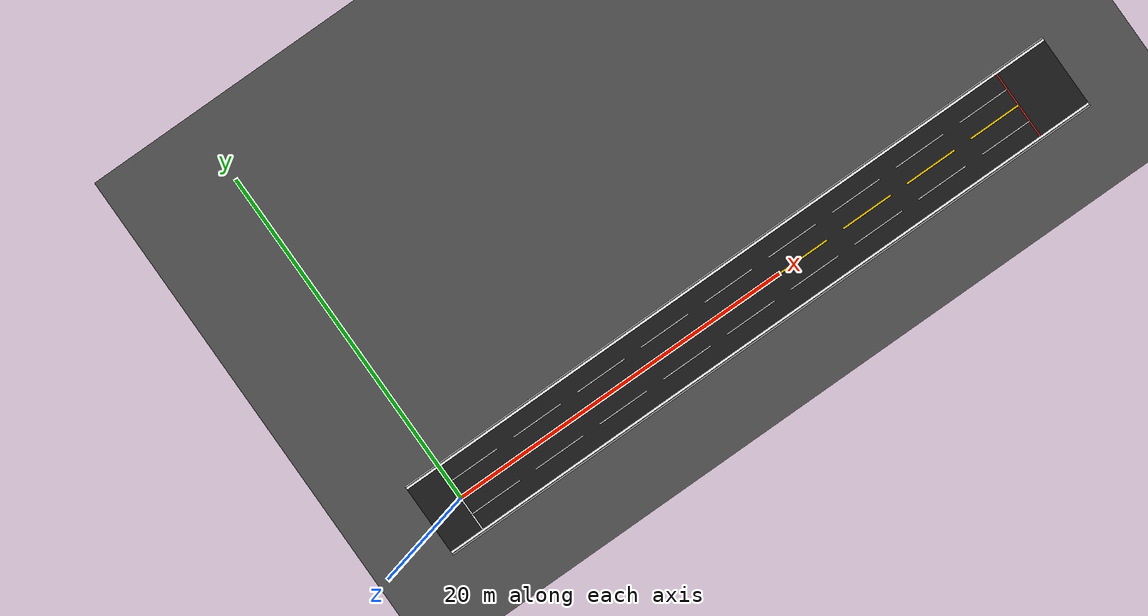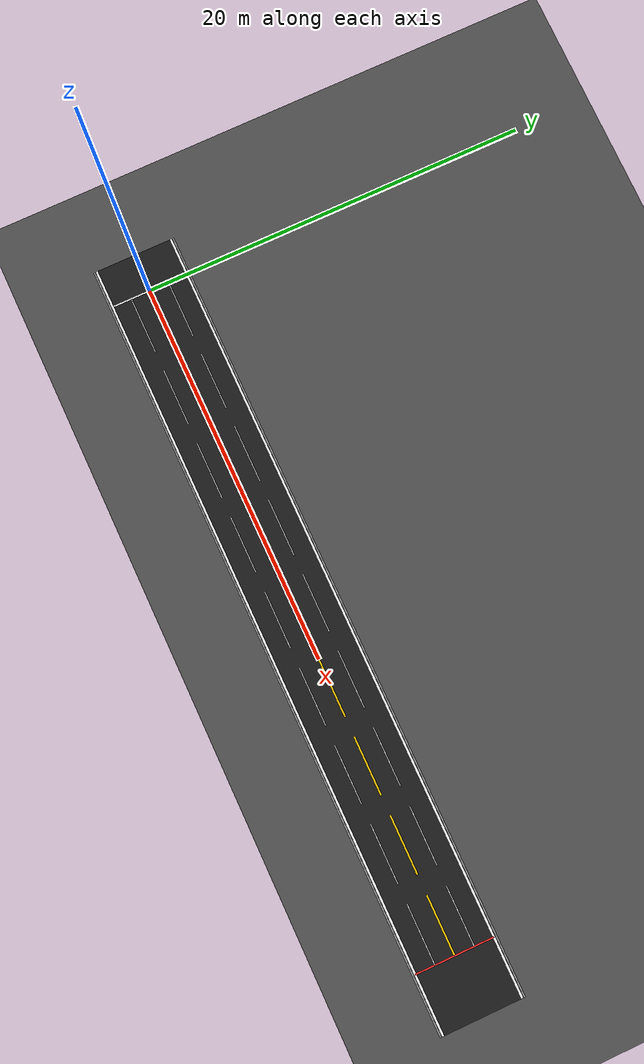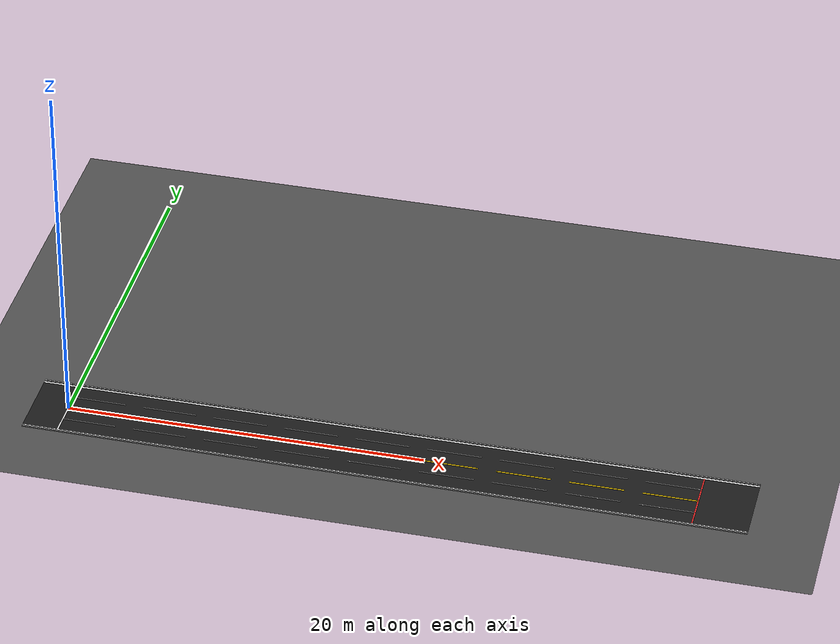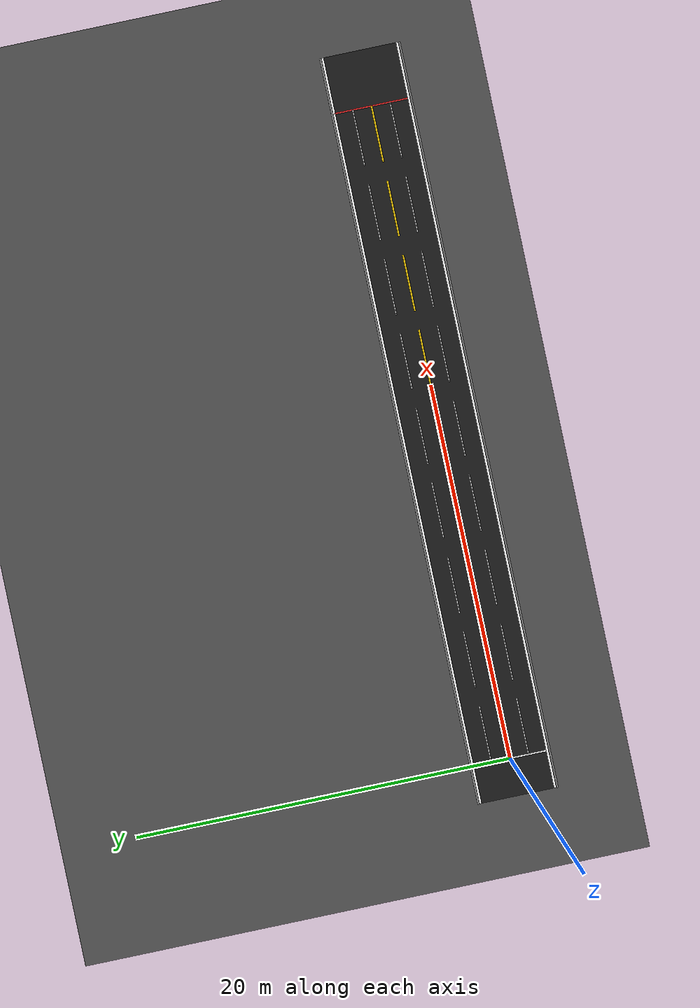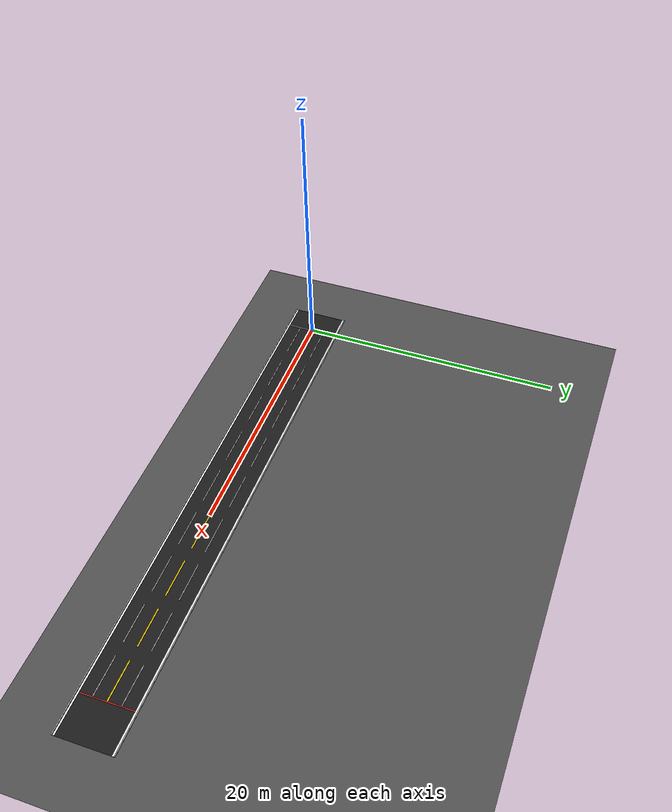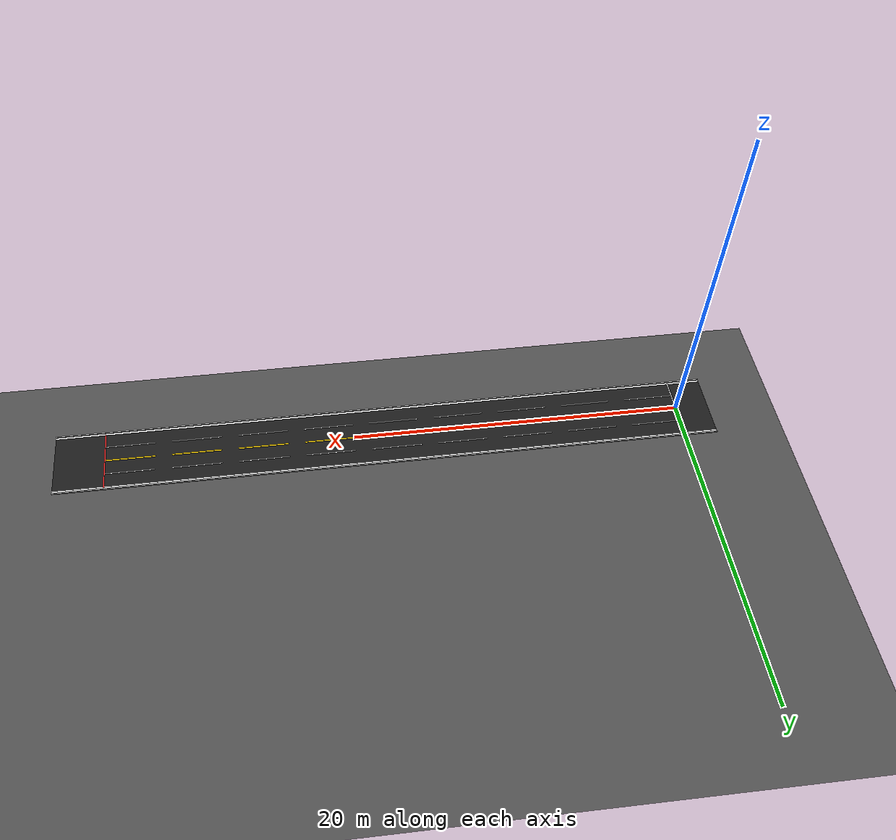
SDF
<?xml version="1.0" ?>
<sdf version="1.6">
  <world name="two_lane_world">

    <!-- ══════════════ PHYSICS ══════════════════════════════════ -->
    <physics name="1ms" type="ignored">
      <max_step_size>0.001</max_step_size>
      <real_time_factor>1.0</real_time_factor>
    </physics>

    <!-- ══════════════ SYSTEM PLUGINS ═══════════════════════════ -->
    <plugin filename="gz-sim-physics-system"
            name="gz::sim::systems::Physics"/>
    <plugin filename="gz-sim-user-commands-system"
            name="gz::sim::systems::UserCommands"/>
    <plugin filename="gz-sim-scene-broadcaster-system"
            name="gz::sim::systems::SceneBroadcaster"/>
    <plugin filename="gz-sim-contact-system"
            name="gz::sim::systems::Contact"/>

    <!-- ══════════════ LIGHTING ══════════════════════════════════ -->
    <light type="directional" name="sun">
      <cast_shadows>true</cast_shadows>
      <pose>0 0 10 0 0 0</pose>
      <diffuse>0.8 0.8 0.8 1</diffuse>
      <specular>0.2 0.2 0.2 1</specular>
      <attenuation>
        <range>1000</range>
        <constant>0.9</constant>
        <linear>0.01</linear>
        <quadratic>0.001</quadratic>
      </attenuation>
      <direction>-0.5 0.1 -0.9</direction>
    </light>

    <!-- ══════════════ GROUND PLANE (extends beyond road) ════════ -->
    <model name="ground_plane">
      <static>true</static>
      <link name="link">
        <collision name="collision">
          <geometry>
            <plane>
              <normal>0 0 1</normal>
              <size>200 200</size>
            </plane>
          </geometry>
        </collision>
        <visual name="visual">
          <geometry>
            <plane>
              <normal>0 0 1</normal>
              <size>200 200</size>
            </plane>
          </geometry>
          <material>
            <ambient>0.3 0.3 0.3 1</ambient>
            <diffuse>0.3 0.3 0.3 1</diffuse>
            <specular>0.1 0.1 0.1 1</specular>
          </material>
        </visual>
      </link>
    </model>

    <!-- ══════════════ ROAD SURFACE (dark asphalt, 40 m × 4 m) ══ -->
    <model name="road_surface">
      <static>true</static>
      <pose>18 0 0.001 0 0 0</pose>
      <link name="link">
        <visual name="visual">
          <geometry>
            <box><size>40 4.0 0.002</size></box>
          </geometry>
          <material>
            <ambient>0.08 0.08 0.08 1</ambient>
            <diffuse>0.10 0.10 0.10 1</diffuse>
            <specular>0.02 0.02 0.02 1</specular>
          </material>
        </visual>
      </link>
    </model>

    <!-- ══════════════ LEFT ROAD EDGE  Y = +2.0 ══════════════════ -->
    <model name="edge_left">
      <static>true</static>
      <pose>18 2.0 0.003 0 0 0</pose>
      <link name="link">
        <visual name="visual">
          <geometry><box><size>40 0.12 0.004</size></box></geometry>
          <material>
            <ambient>0.95 0.95 0.95 1</ambient>
            <diffuse>0.95 0.95 0.95 1</diffuse>
            <specular>0.2 0.2 0.2 1</specular>
          </material>
        </visual>
      </link>
    </model>

    <!-- ══════════════ RIGHT ROAD EDGE  Y = −2.0 ═════════════════ -->
    <model name="edge_right">
      <static>true</static>
      <pose>18 -2.0 0.003 0 0 0</pose>
      <link name="link">
        <visual name="visual">
          <geometry><box><size>40 0.12 0.004</size></box></geometry>
          <material>
            <ambient>0.95 0.95 0.95 1</ambient>
            <diffuse>0.95 0.95 0.95 1</diffuse>
            <specular>0.2 0.2 0.2 1</specular>
          </material>
        </visual>
      </link>
    </model>

    <!-- ══════════════ CENTRE DASHED DIVIDER  Y = 0  (yellow) ════ -->
    <!-- 10 dashes, 3 m on / 1 m off, starting at X=1.5 -->
    <model name="dash_c_0"><static>true</static><pose>1.5  0 0.003 0 0 0</pose><link name="l"><visual name="v"><geometry><box><size>3.0 0.10 0.004</size></box></geometry><material><ambient>0.9 0.75 0.0 1</ambient><diffuse>0.9 0.75 0.0 1</diffuse></material></visual></link></model>
    <model name="dash_c_1"><static>true</static><pose>5.5  0 0.003 0 0 0</pose><link name="l"><visual name="v"><geometry><box><size>3.0 0.10 0.004</size></box></geometry><material><ambient>0.9 0.75 0.0 1</ambient><diffuse>0.9 0.75 0.0 1</diffuse></material></visual></link></model>
    <model name="dash_c_2"><static>true</static><pose>9.5  0 0.003 0 0 0</pose><link name="l"><visual name="v"><geometry><box><size>3.0 0.10 0.004</size></box></geometry><material><ambient>0.9 0.75 0.0 1</ambient><diffuse>0.9 0.75 0.0 1</diffuse></material></visual></link></model>
    <model name="dash_c_3"><static>true</static><pose>13.5 0 0.003 0 0 0</pose><link name="l"><visual name="v"><geometry><box><size>3.0 0.10 0.004</size></box></geometry><material><ambient>0.9 0.75 0.0 1</ambient><diffuse>0.9 0.75 0.0 1</diffuse></material></visual></link></model>
    <model name="dash_c_4"><static>true</static><pose>17.5 0 0.003 0 0 0</pose><link name="l"><visual name="v"><geometry><box><size>3.0 0.10 0.004</size></box></geometry><material><ambient>0.9 0.75 0.0 1</ambient><diffuse>0.9 0.75 0.0 1</diffuse></material></visual></link></model>
    <model name="dash_c_5"><static>true</static><pose>21.5 0 0.003 0 0 0</pose><link name="l"><visual name="v"><geometry><box><size>3.0 0.10 0.004</size></box></geometry><material><ambient>0.9 0.75 0.0 1</ambient><diffuse>0.9 0.75 0.0 1</diffuse></material></visual></link></model>
    <model name="dash_c_6"><static>true</static><pose>25.5 0 0.003 0 0 0</pose><link name="l"><visual name="v"><geometry><box><size>3.0 0.10 0.004</size></box></geometry><material><ambient>0.9 0.75 0.0 1</ambient><diffuse>0.9 0.75 0.0 1</diffuse></material></visual></link></model>
    <model name="dash_c_7"><static>true</static><pose>29.5 0 0.003 0 0 0</pose><link name="l"><visual name="v"><geometry><box><size>3.0 0.10 0.004</size></box></geometry><material><ambient>0.9 0.75 0.0 1</ambient><diffuse>0.9 0.75 0.0 1</diffuse></material></visual></link></model>
    <model name="dash_c_8"><static>true</static><pose>33.5 0 0.003 0 0 0</pose><link name="l"><visual name="v"><geometry><box><size>3.0 0.10 0.004</size></box></geometry><material><ambient>0.9 0.75 0.0 1</ambient><diffuse>0.9 0.75 0.0 1</diffuse></material></visual></link></model>

    <!-- ══════════════ RIGHT LANE CENTRE LINE  Y = −1.0  (white) ═ -->
    <model name="lc_r_0"><static>true</static><pose>1.5  -1.0 0.003 0 0 0</pose><link name="l"><visual name="v"><geometry><box><size>3.0 0.06 0.004</size></box></geometry><material><ambient>0.85 0.85 0.85 1</ambient><diffuse>0.85 0.85 0.85 1</diffuse></material></visual></link></model>
    <model name="lc_r_1"><static>true</static><pose>5.5  -1.0 0.003 0 0 0</pose><link name="l"><visual name="v"><geometry><box><size>3.0 0.06 0.004</size></box></geometry><material><ambient>0.85 0.85 0.85 1</ambient><diffuse>0.85 0.85 0.85 1</diffuse></material></visual></link></model>
    <model name="lc_r_2"><static>true</static><pose>9.5  -1.0 0.003 0 0 0</pose><link name="l"><visual name="v"><geometry><box><size>3.0 0.06 0.004</size></box></geometry><material><ambient>0.85 0.85 0.85 1</ambient><diffuse>0.85 0.85 0.85 1</diffuse></material></visual></link></model>
    <model name="lc_r_3"><static>true</static><pose>13.5 -1.0 0.003 0 0 0</pose><link name="l"><visual name="v"><geometry><box><size>3.0 0.06 0.004</size></box></geometry><material><ambient>0.85 0.85 0.85 1</ambient><diffuse>0.85 0.85 0.85 1</diffuse></material></visual></link></model>
    <model name="lc_r_4"><static>true</static><pose>17.5 -1.0 0.003 0 0 0</pose><link name="l"><visual name="v"><geometry><box><size>3.0 0.06 0.004</size></box></geometry><material><ambient>0.85 0.85 0.85 1</ambient><diffuse>0.85 0.85 0.85 1</diffuse></material></visual></link></model>
    <model name="lc_r_5"><static>true</static><pose>21.5 -1.0 0.003 0 0 0</pose><link name="l"><visual name="v"><geometry><box><size>3.0 0.06 0.004</size></box></geometry><material><ambient>0.85 0.85 0.85 1</ambient><diffuse>0.85 0.85 0.85 1</diffuse></material></visual></link></model>
    <model name="lc_r_6"><static>true</static><pose>25.5 -1.0 0.003 0 0 0</pose><link name="l"><visual name="v"><geometry><box><size>3.0 0.06 0.004</size></box></geometry><material><ambient>0.85 0.85 0.85 1</ambient><diffuse>0.85 0.85 0.85 1</diffuse></material></visual></link></model>
    <model name="lc_r_7"><static>true</static><pose>29.5 -1.0 0.003 0 0 0</pose><link name="l"><visual name="v"><geometry><box><size>3.0 0.06 0.004</size></box></geometry><material><ambient>0.85 0.85 0.85 1</ambient><diffuse>0.85 0.85 0.85 1</diffuse></material></visual></link></model>
    <model name="lc_r_8"><static>true</static><pose>33.5 -1.0 0.003 0 0 0</pose><link name="l"><visual name="v"><geometry><box><size>3.0 0.06 0.004</size></box></geometry><material><ambient>0.85 0.85 0.85 1</ambient><diffuse>0.85 0.85 0.85 1</diffuse></material></visual></link></model>

    <!-- ══════════════ LEFT LANE CENTRE LINE  Y = +1.0  (white) ══ -->
    <model name="lc_l_0"><static>true</static><pose>1.5   1.0 0.003 0 0 0</pose><link name="l"><visual name="v"><geometry><box><size>3.0 0.06 0.004</size></box></geometry><material><ambient>0.85 0.85 0.85 1</ambient><diffuse>0.85 0.85 0.85 1</diffuse></material></visual></link></model>
    <model name="lc_l_1"><static>true</static><pose>5.5   1.0 0.003 0 0 0</pose><link name="l"><visual name="v"><geometry><box><size>3.0 0.06 0.004</size></box></geometry><material><ambient>0.85 0.85 0.85 1</ambient><diffuse>0.85 0.85 0.85 1</diffuse></material></visual></link></model>
    <model name="lc_l_2"><static>true</static><pose>9.5   1.0 0.003 0 0 0</pose><link name="l"><visual name="v"><geometry><box><size>3.0 0.06 0.004</size></box></geometry><material><ambient>0.85 0.85 0.85 1</ambient><diffuse>0.85 0.85 0.85 1</diffuse></material></visual></link></model>
    <model name="lc_l_3"><static>true</static><pose>13.5  1.0 0.003 0 0 0</pose><link name="l"><visual name="v"><geometry><box><size>3.0 0.06 0.004</size></box></geometry><material><ambient>0.85 0.85 0.85 1</ambient><diffuse>0.85 0.85 0.85 1</diffuse></material></visual></link></model>
    <model name="lc_l_4"><static>true</static><pose>17.5  1.0 0.003 0 0 0</pose><link name="l"><visual name="v"><geometry><box><size>3.0 0.06 0.004</size></box></geometry><material><ambient>0.85 0.85 0.85 1</ambient><diffuse>0.85 0.85 0.85 1</diffuse></material></visual></link></model>
    <model name="lc_l_5"><static>true</static><pose>21.5  1.0 0.003 0 0 0</pose><link name="l"><visual name="v"><geometry><box><size>3.0 0.06 0.004</size></box></geometry><material><ambient>0.85 0.85 0.85 1</ambient><diffuse>0.85 0.85 0.85 1</diffuse></material></visual></link></model>
    <model name="lc_l_6"><static>true</static><pose>25.5  1.0 0.003 0 0 0</pose><link name="l"><visual name="v"><geometry><box><size>3.0 0.06 0.004</size></box></geometry><material><ambient>0.85 0.85 0.85 1</ambient><diffuse>0.85 0.85 0.85 1</diffuse></material></visual></link></model>
    <model name="lc_l_7"><static>true</static><pose>29.5  1.0 0.003 0 0 0</pose><link name="l"><visual name="v"><geometry><box><size>3.0 0.06 0.004</size></box></geometry><material><ambient>0.85 0.85 0.85 1</ambient><diffuse>0.85 0.85 0.85 1</diffuse></material></visual></link></model>
    <model name="lc_l_8"><static>true</static><pose>33.5  1.0 0.003 0 0 0</pose><link name="l"><visual name="v"><geometry><box><size>3.0 0.06 0.004</size></box></geometry><material><ambient>0.85 0.85 0.85 1</ambient><diffuse>0.85 0.85 0.85 1</diffuse></material></visual></link></model>

    <!-- ══════════════ START LINE  (white, X=0) ═══════════════════ -->
    <model name="start_line">
      <static>true</static>
      <pose>0 0 0.003 0 0 0</pose>
      <link name="link">
        <visual name="visual">
          <geometry><box><size>0.08 4.0 0.004</size></box></geometry>
          <material>
            <ambient>1.0 1.0 1.0 1</ambient>
            <diffuse>1.0 1.0 1.0 1</diffuse>
          </material>
        </visual>
      </link>
    </model>

    <!-- ══════════════ END LINE  (red, X=35) ══════════════════════ -->
    <model name="end_line">
      <static>true</static>
      <pose>35 0 0.003 0 0 0</pose>
      <link name="link">
        <visual name="visual">
          <geometry><box><size>0.08 4.0 0.004</size></box></geometry>
          <material>
            <ambient>0.9 0.15 0.15 1</ambient>
            <diffuse>0.9 0.15 0.15 1</diffuse>
          </material>
        </visual>
      </link>
    </model>

    <!-- ══════════════ KERB WALLS (physical barriers) ══════════════ -->
    <model name="kerb_left">
      <static>true</static>
      <pose>18 2.12 0.03 0 0 0</pose>
      <link name="link">
        <collision name="collision">
          <geometry><box><size>40 0.08 0.06</size></box></geometry>
        </collision>
        <visual name="visual">
          <geometry><box><size>40 0.08 0.06</size></box></geometry>
          <material>
            <ambient>0.6 0.6 0.6 1</ambient>
            <diffuse>0.6 0.6 0.6 1</diffuse>
          </material>
        </visual>
      </link>
    </model>

    <model name="kerb_right">
      <static>true</static>
      <pose>18 -2.12 0.03 0 0 0</pose>
      <link name="link">
        <collision name="collision">
          <geometry><box><size>40 0.08 0.06</size></box></geometry>
        </collision>
        <visual name="visual">
          <geometry><box><size>40 0.08 0.06</size></box></geometry>
          <material>
            <ambient>0.6 0.6 0.6 1</ambient>
            <diffuse>0.6 0.6 0.6 1</diffuse>
          </material>
        </visual>
      </link>
    </model>

  </world>
</sdf>
